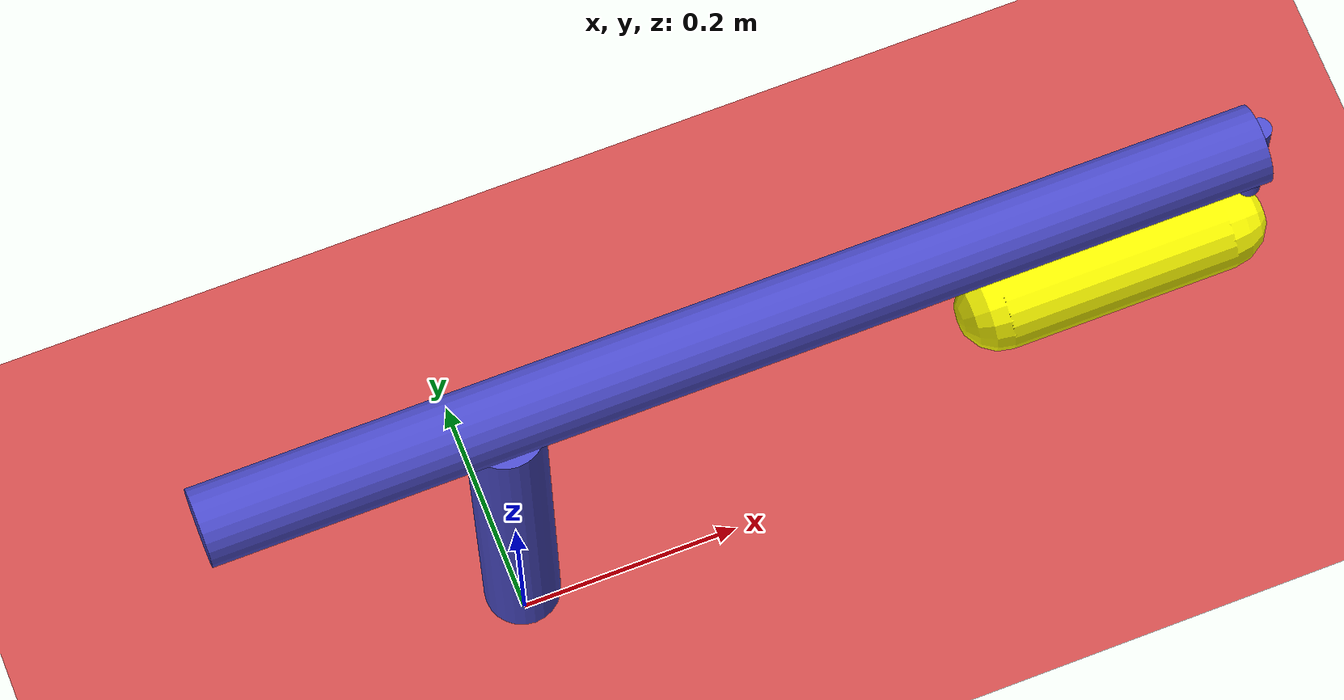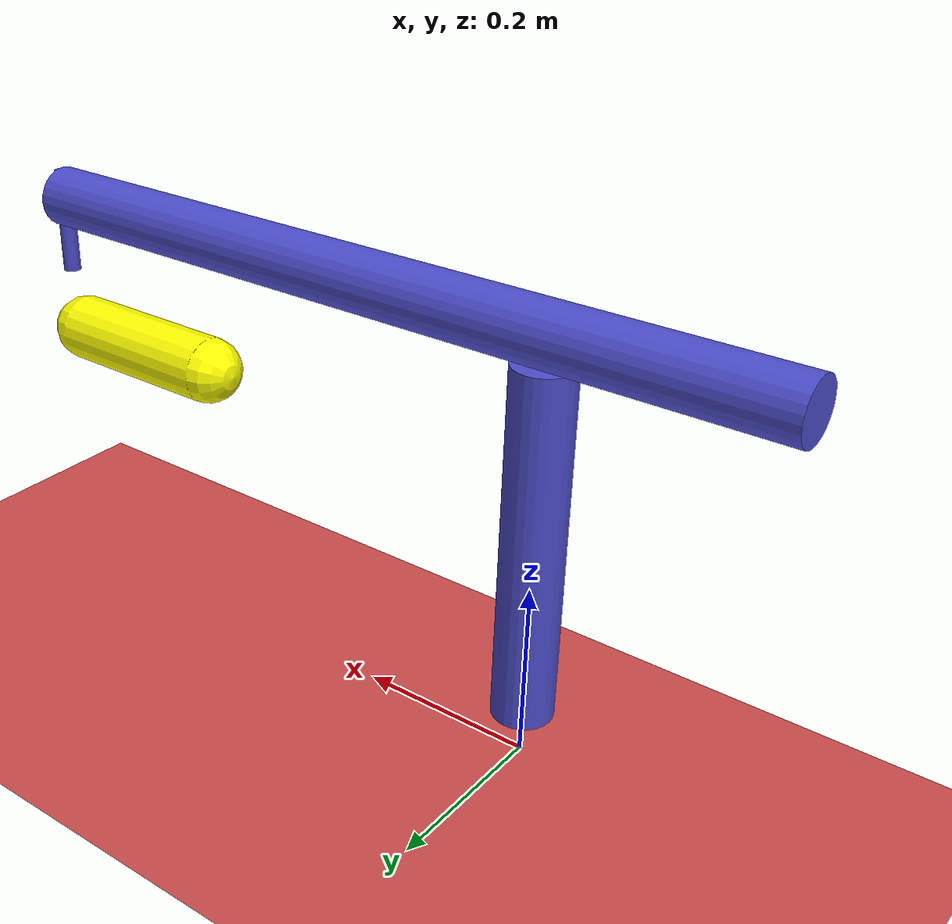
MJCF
<mujoco model="HapticMaster">
  <option timestep="0.001" gravity="0.0 0.0 0.0"/>

  <compiler angle="degree" coordinate="local"/>

  <worldbody>
    <!-- Plane for Reference -->
    <body name="base" pos="0 0 0">
      <geom type="plane" size="1 1 0.1" rgba="0.8 0.3 0.3 1"/>

      <!-- Banana modeled as a capsule -->
      <body name="banana" pos="0.54 0 0.32" axisangle="0 1 0 90">
        <geom name="banana" type="capsule" size="0.0381 0.1016" mass="0.118" pos="0 0 0" friction="0.2 0.005 0.005" rgba="1 1 0 1"/>
        <joint name="prismatic_vertical_banana" type="slide" axis="1 0 0" range="-0.2 0.2"/>
        <joint name="prismatic_horizontal_banana" type="slide" axis="0 0 1" range="-0.36 0.2"/>
        <site name="end_effector"/>
      </body>

      <!-- Vertical Prismatic + Revolute -->
      <body name="Body1" pos="0 0 0.25">
        <geom type="cylinder" size="0.0337 0.2" mass="5" rgba="0.3 0.3 0.8 1"/>
        <joint name="prismatic_vertical" type="slide" axis="0 0 1" range="-0.25 0.15"/>
        <joint name="revolute" type="hinge" axis="0 0 1" range="-28.65 28.65"/>

        <!-- Horizontal Prismatic -->
        <body name="Body2" pos="0.2 0 0.23" axisangle="0 1 0 90">
          <geom type="cylinder" size="0.0337 0.46" mass="5" rgba="0.3 0.3 0.8 1"/>
          <joint name="prismatic_horizontal" type="slide" axis="0 0 1" range="-0.36 0"/>

          <!-- End Effector -->
          <body name="EE" pos="0.03 0 0.46" axisangle="0 1 0 90">
            <geom type="cylinder" size="0.01 0.06" mass="0.2" rgba="0.3 0.3 0.8 1"/>
          </body>
        </body>
      </body>
    </body>
  </worldbody>

  <contact>
    <exclude body1="base" body2="Body1"/>
    <exclude body1="banana" body2="Body1"/>
    <exclude body1="banana" body2="Body2"/>
  </contact>

  <!-- Actuators -->
  <actuator>
    <motor name="revolute_torque" joint="revolute" ctrllimited="true" ctrlrange="-1 1"/>
    <motor name="vertical_force" joint="prismatic_vertical" ctrllimited="true" ctrlrange="-1 1"/>
    <motor name="horizontal_force" joint="prismatic_horizontal" ctrllimited="true" ctrlrange="-1 1"/>
    <position joint="prismatic_vertical_banana" kp="50" kv="20"/>
    <position joint="prismatic_horizontal_banana" kp="50" kv="20"/>
  </actuator>

  <!-- Sensors -->
  <sensor>
    <framepos objtype="body" objname="EE" name="EE_pos"/>
    <framelinvel objtype="body" objname="EE" name="EE_vel"/>
    <force site="end_effector" name="EE_force"/>
  </sensor>
</mujoco>
